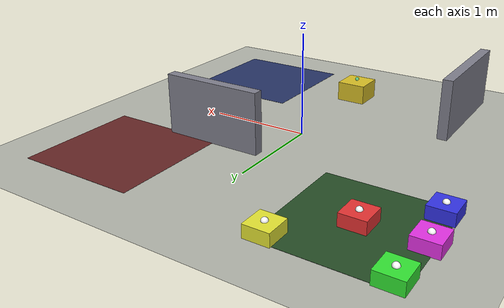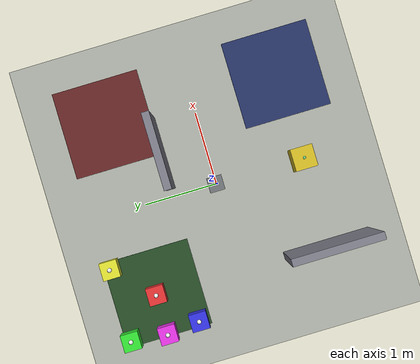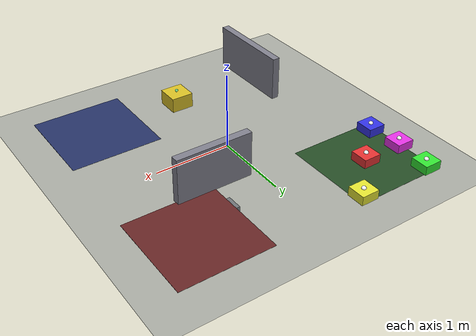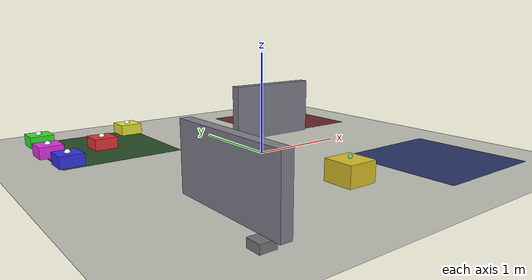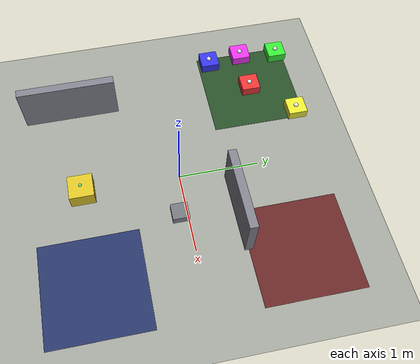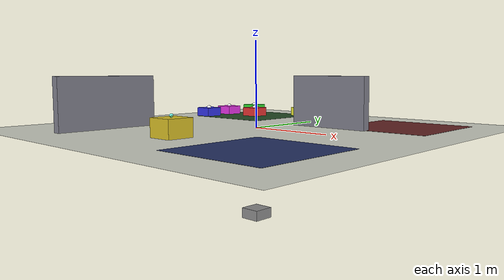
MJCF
<mujoco model="micro_warehouse">
  <compiler angle="radian" autolimits="true"/>
  <option timestep="0.002" gravity="0 0 -9.81" integrator="implicitfast"/>

  <visual>
    <global offwidth="640" offheight="480"/>
    <quality shadowsize="2048"/>
  </visual>

  <default>
    <geom solimp="0.95 0.99 0.001" solref="0.005 1"/>
    <default class="pallet">
      <geom type="box" size="0.12 0.12 0.06" mass="1.0" friction="1 0.05 0.001"/>
    </default>
  </default>

  <asset>
    <texture name="grid" type="2d" builtin="checker" rgb1="0.2 0.25 0.3" rgb2="0.25 0.3 0.35"
             width="512" height="512"/>
    <material name="grid" texture="grid" texrepeat="8 8" reflectance="0.1"/>
    <material name="floor_receiving" rgba="0.15 0.30 0.15 1"/>
    <material name="floor_quarantine" rgba="0.40 0.15 0.15 1"/>
    <material name="floor_shipping"   rgba="0.15 0.20 0.40 1"/>
    <material name="lift" rgba="0.85 0.75 0.15 1"/>
  </asset>

  <worldbody>
    <light name="sun" pos="0 0 4" dir="0 0 -1" diffuse="0.9 0.9 0.9" specular="0.2 0.2 0.2"/>
    <geom name="floor" type="plane" size="3 3 0.1" material="grid" pos="0 0 0"/>

    <!-- Zone markers (thin visual pads on the floor; also segmentation targets). -->
    <geom name="zone_receiving"  type="box" size="0.6 0.6 0.001" pos="-1.2  1.2 0.001"
          material="floor_receiving" contype="0" conaffinity="0"/>
    <geom name="zone_quarantine" type="box" size="0.6 0.6 0.001" pos=" 1.2  1.2 0.001"
          material="floor_quarantine" contype="0" conaffinity="0"/>
    <geom name="zone_shipping"   type="box" size="0.6 0.6 0.001" pos=" 1.2 -1.2 0.001"
          material="floor_shipping" contype="0" conaffinity="0"/>

    <!-- Static shelf blocks (obstacles / storage). -->
    <geom name="shelf_a" type="box" size="0.05 0.6 0.3" pos="-1.2 -1.2 0.3" rgba="0.5 0.5 0.55 1"/>
    <geom name="shelf_b" type="box" size="0.5 0.05 0.3" pos="0.6 0.6 0.3"   rgba="0.5 0.5 0.55 1"/>

    <!-- Pallets: free bodies, distinct colors, a tag site each (physical anchor). -->
    <body name="pallet_1" pos="-1.2 1.2 0.06">
      <freejoint name="pallet_1_free"/>
      <geom name="pallet_1_geom" class="pallet" rgba="0.90 0.20 0.20 1"/>
      <site name="pallet_1_tag" pos="0 0 0.061" size="0.03" rgba="1 1 1 1"/>
    </body>
    <body name="pallet_2" pos="-1.7 1.7 0.06">
      <freejoint name="pallet_2_free"/>
      <geom name="pallet_2_geom" class="pallet" rgba="0.20 0.90 0.20 1"/>
      <site name="pallet_2_tag" pos="0 0 0.061" size="0.03" rgba="1 1 1 1"/>
    </body>
    <body name="pallet_3" pos="-1.7 0.75 0.06">
      <freejoint name="pallet_3_free"/>
      <geom name="pallet_3_geom" class="pallet" rgba="0.20 0.20 0.90 1"/>
      <site name="pallet_3_tag" pos="0 0 0.061" size="0.03" rgba="1 1 1 1"/>
    </body>
    <body name="pallet_4" pos="-0.7 1.7 0.06">
      <freejoint name="pallet_4_free"/>
      <geom name="pallet_4_geom" class="pallet" rgba="0.90 0.90 0.20 1"/>
      <site name="pallet_4_tag" pos="0 0 0.061" size="0.03" rgba="1 1 1 1"/>
    </body>
    <body name="pallet_5" pos="-1.75 1.2 0.06">
      <freejoint name="pallet_5_free"/>
      <geom name="pallet_5_geom" class="pallet" rgba="0.90 0.20 0.90 1"/>
      <site name="pallet_5_tag" pos="0 0 0.061" size="0.03" rgba="1 1 1 1"/>
    </body>

    <!-- Unknown pallet: starts hidden below the floor; the Invisible Hand's spawn_unknown
         reveals it (an untagged, unregistered object — no tag site). -->
    <body name="pallet_unknown_1" pos="0 0 -1.0">
      <freejoint name="pallet_unknown_1_free"/>
      <geom name="pallet_unknown_1_geom" class="pallet" rgba="0.55 0.55 0.55 1"/>
    </body>

    <!-- Lift-bot: an omnidirectional mobile base (x, y slides + z lift), idealized carrier. -->
    <body name="lift_bot" pos="0 -1.2 0.1">
      <joint name="bot_x" type="slide" axis="1 0 0" range="-2.5 2.5" damping="40"/>
      <joint name="bot_y" type="slide" axis="0 1 0" range="-2.5 2.5" damping="40"/>
      <geom name="lift_bot_geom" type="box" size="0.15 0.15 0.1" material="lift" mass="10"/>
      <site name="lift_bot_carry" pos="0 0 0.12" size="0.02" rgba="0 1 1 0.5"/>
      <camera name="bot_cam" pos="0 0 0.4" xyaxes="1 0 0 0 1 0" fovy="70"/>
    </body>

    <!-- Overhead + corner cameras for offscreen rendering. -->
    <camera name="overhead" pos="0 0 4.5" xyaxes="1 0 0 0 1 0" fovy="60"/>
    <camera name="corner" pos="2.6 -2.6 2.2" xyaxes="0.7 0.7 0 -0.4 0.4 0.8" fovy="55"/>
  </worldbody>

  <actuator>
    <position name="bot_x_act" joint="bot_x" kp="200" ctrlrange="-2.5 2.5"/>
    <position name="bot_y_act" joint="bot_y" kp="200" ctrlrange="-2.5 2.5"/>
  </actuator>
</mujoco>
